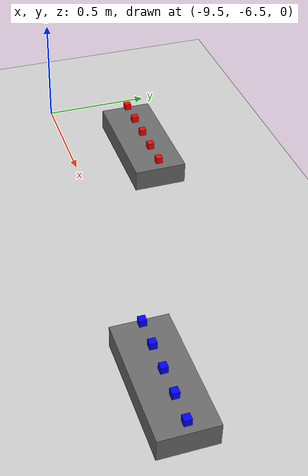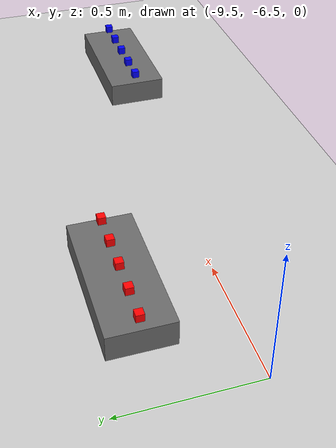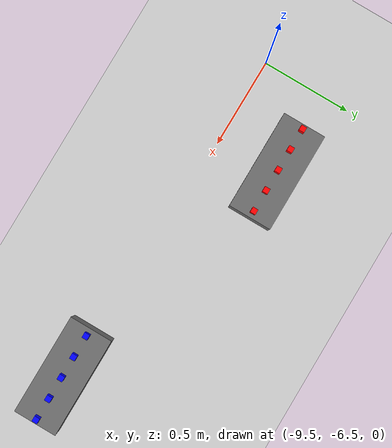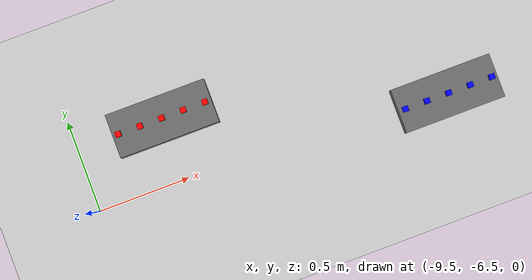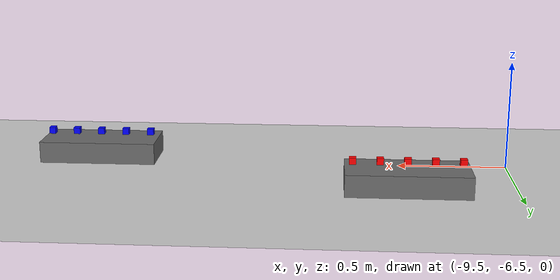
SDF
<sdf version="1.4">
 <world name="default">
  <model name="ground_plane">
   <static>1</static>
   <link name="link">
    <collision name="collision">
     <geometry><plane><normal>0 0 1</normal><size>100 100</size></plane></geometry>
     <surface><friction><ode><mu>100</mu><mu2>50</mu2></ode></friction></surface>
    </collision>
    <visual name="visual">
     <cast_shadows>0</cast_shadows>
     <geometry><plane><normal>0 0 1</normal><size>100 100</size></plane></geometry>
     <material>
      <script><uri>file://media/materials/scripts/gazebo.material</uri><name>Gazebo/Grey</name></script>
     </material>
    </visual>
    <velocity_decay><linear>0</linear><angular>0</angular></velocity_decay>
   </link>
  </model>
  <model name="competition_red_pickup_shelf">
   <static>true</static>
   <pose>-9.016206 -6.160457 0.050000 0.000000 0.000000 1.570800</pose>
   <link name="shelf">
    <collision name="collision">
     <geometry><box><size>0.24 0.55 0.10</size></box></geometry>
     <surface><friction><ode><mu>5.0</mu><mu2>5.0</mu2></ode></friction></surface>
    </collision>
    <visual name="visual">
     <geometry><box><size>0.24 0.55 0.10</size></box></geometry>
     <material><ambient>0.32 0.32 0.32 1</ambient><diffuse>0.42 0.42 0.42 1</diffuse></material>
    </visual>
   </link>
  </model>
  <model name="competition_blue_pickup_shelf">
   <static>true</static>
   <pose>-7.570590 -6.560699 0.050000 0.000000 0.000000 1.570800</pose>
   <link name="shelf">
    <collision name="collision">
     <geometry><box><size>0.24 0.55 0.10</size></box></geometry>
     <surface><friction><ode><mu>5.0</mu><mu2>5.0</mu2></ode></friction></surface>
    </collision>
    <visual name="visual">
     <geometry><box><size>0.24 0.55 0.10</size></box></geometry>
     <material><ambient>0.32 0.32 0.32 1</ambient><diffuse>0.42 0.42 0.42 1</diffuse></material>
    </visual>
   </link>
  </model>
  <model name="red_cube_1">
   <pose>-9.016206 -6.160457 0.130000 0.000000 0.000000 0.000000</pose>
   <link name="link">
    <inertial><mass>0.1</mass></inertial>
    <collision name="collision">
     <geometry><box><size>0.03 0.03 0.03</size></box></geometry>
     <surface><friction><ode><mu>5.0</mu><mu2>5.0</mu2></ode></friction></surface>
    </collision>
    <visual name="visual">
     <geometry><box><size>0.03 0.03 0.03</size></box></geometry>
     <material><ambient>1 0 0 1</ambient><diffuse>1 0 0 1</diffuse></material>
    </visual>
   </link>
  </model>
  <model name="red_cube_2">
   <pose>-8.896238 -6.160480 0.130000 0.000000 0.000000 0.000000</pose>
   <link name="link">
    <inertial><mass>0.1</mass></inertial>
    <collision name="collision">
     <geometry><box><size>0.03 0.03 0.03</size></box></geometry>
     <surface><friction><ode><mu>5.0</mu><mu2>5.0</mu2></ode></friction></surface>
    </collision>
    <visual name="visual">
     <geometry><box><size>0.03 0.03 0.03</size></box></geometry>
     <material><ambient>1 0 0 1</ambient><diffuse>1 0 0 1</diffuse></material>
    </visual>
   </link>
  </model>
  <model name="red_cube_3">
   <pose>-9.136224 -6.160432 0.130000 0.000000 0.000000 0.000000</pose>
   <link name="link">
    <inertial><mass>0.1</mass></inertial>
    <collision name="collision">
     <geometry><box><size>0.03 0.03 0.03</size></box></geometry>
     <surface><friction><ode><mu>5.0</mu><mu2>5.0</mu2></ode></friction></surface>
    </collision>
    <visual name="visual">
     <geometry><box><size>0.03 0.03 0.03</size></box></geometry>
     <material><ambient>1 0 0 1</ambient><diffuse>1 0 0 1</diffuse></material>
    </visual>
   </link>
  </model>
  <model name="red_cube_4">
   <pose>-8.776237 -6.160441 0.130000 0.000000 0.000000 0.000000</pose>
   <link name="link">
    <inertial><mass>0.1</mass></inertial>
    <collision name="collision">
     <geometry><box><size>0.03 0.03 0.03</size></box></geometry>
     <surface><friction><ode><mu>5.0</mu><mu2>5.0</mu2></ode></friction></surface>
    </collision>
    <visual name="visual">
     <geometry><box><size>0.03 0.03 0.03</size></box></geometry>
     <material><ambient>1 0 0 1</ambient><diffuse>1 0 0 1</diffuse></material>
    </visual>
   </link>
  </model>
  <model name="red_cube_5">
   <pose>-9.256202 -6.160484 0.130000 0.000000 0.000000 0.000000</pose>
   <link name="link">
    <inertial><mass>0.1</mass></inertial>
    <collision name="collision">
     <geometry><box><size>0.03 0.03 0.03</size></box></geometry>
     <surface><friction><ode><mu>5.0</mu><mu2>5.0</mu2></ode></friction></surface>
    </collision>
    <visual name="visual">
     <geometry><box><size>0.03 0.03 0.03</size></box></geometry>
     <material><ambient>1 0 0 1</ambient><diffuse>1 0 0 1</diffuse></material>
    </visual>
   </link>
  </model>
  <model name="blue_cube_1">
   <pose>-7.570590 -6.560699 0.130000 0.000000 0.000000 0.000000</pose>
   <link name="link">
    <inertial><mass>0.1</mass></inertial>
    <collision name="collision">
     <geometry><box><size>0.03 0.03 0.03</size></box></geometry>
     <surface><friction><ode><mu>5.0</mu><mu2>5.0</mu2></ode></friction></surface>
    </collision>
    <visual name="visual">
     <geometry><box><size>0.03 0.03 0.03</size></box></geometry>
     <material><ambient>0 0 1 1</ambient><diffuse>0 0 1 1</diffuse></material>
    </visual>
   </link>
  </model>
  <model name="blue_cube_2">
   <pose>-7.450561 -6.560705 0.130000 0.000000 0.000000 0.000000</pose>
   <link name="link">
    <inertial><mass>0.1</mass></inertial>
    <collision name="collision">
     <geometry><box><size>0.03 0.03 0.03</size></box></geometry>
     <surface><friction><ode><mu>5.0</mu><mu2>5.0</mu2></ode></friction></surface>
    </collision>
    <visual name="visual">
     <geometry><box><size>0.03 0.03 0.03</size></box></geometry>
     <material><ambient>0 0 1 1</ambient><diffuse>0 0 1 1</diffuse></material>
    </visual>
   </link>
  </model>
  <model name="blue_cube_3">
   <pose>-7.690589 -6.560675 0.130000 0.000000 0.000000 0.000000</pose>
   <link name="link">
    <inertial><mass>0.1</mass></inertial>
    <collision name="collision">
     <geometry><box><size>0.03 0.03 0.03</size></box></geometry>
     <surface><friction><ode><mu>5.0</mu><mu2>5.0</mu2></ode></friction></surface>
    </collision>
    <visual name="visual">
     <geometry><box><size>0.03 0.03 0.03</size></box></geometry>
     <material><ambient>0 0 1 1</ambient><diffuse>0 0 1 1</diffuse></material>
    </visual>
   </link>
  </model>
  <model name="blue_cube_4">
   <pose>-7.330572 -6.560677 0.130000 0.000000 0.000000 0.000000</pose>
   <link name="link">
    <inertial><mass>0.1</mass></inertial>
    <collision name="collision">
     <geometry><box><size>0.03 0.03 0.03</size></box></geometry>
     <surface><friction><ode><mu>5.0</mu><mu2>5.0</mu2></ode></friction></surface>
    </collision>
    <visual name="visual">
     <geometry><box><size>0.03 0.03 0.03</size></box></geometry>
     <material><ambient>0 0 1 1</ambient><diffuse>0 0 1 1</diffuse></material>
    </visual>
   </link>
  </model>
  <model name="blue_cube_5">
   <pose>-7.810589 -6.560699 0.130000 0.000000 0.000000 0.000000</pose>
   <link name="link">
    <inertial><mass>0.1</mass></inertial>
    <collision name="collision">
     <geometry><box><size>0.03 0.03 0.03</size></box></geometry>
     <surface><friction><ode><mu>5.0</mu><mu2>5.0</mu2></ode></friction></surface>
    </collision>
    <visual name="visual">
     <geometry><box><size>0.03 0.03 0.03</size></box></geometry>
     <material><ambient>0 0 1 1</ambient><diffuse>0 0 1 1</diffuse></material>
    </visual>
   </link>
  </model>
 </world>
</sdf>
